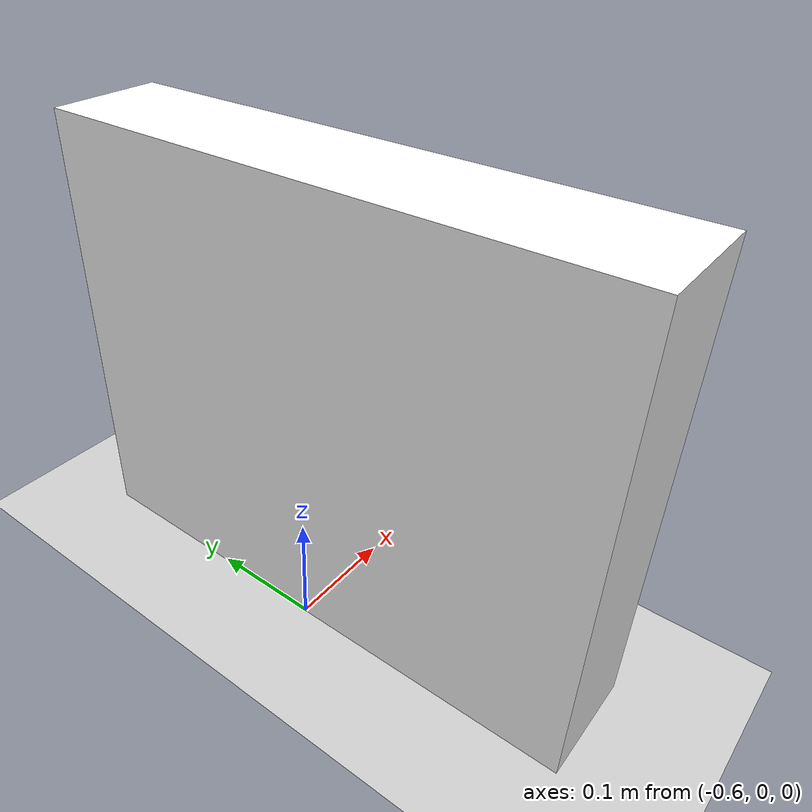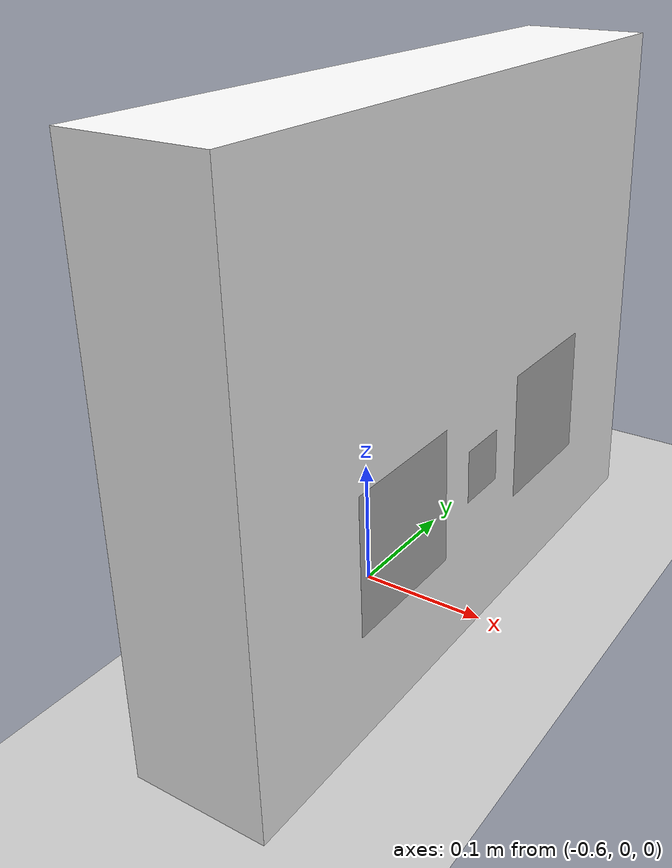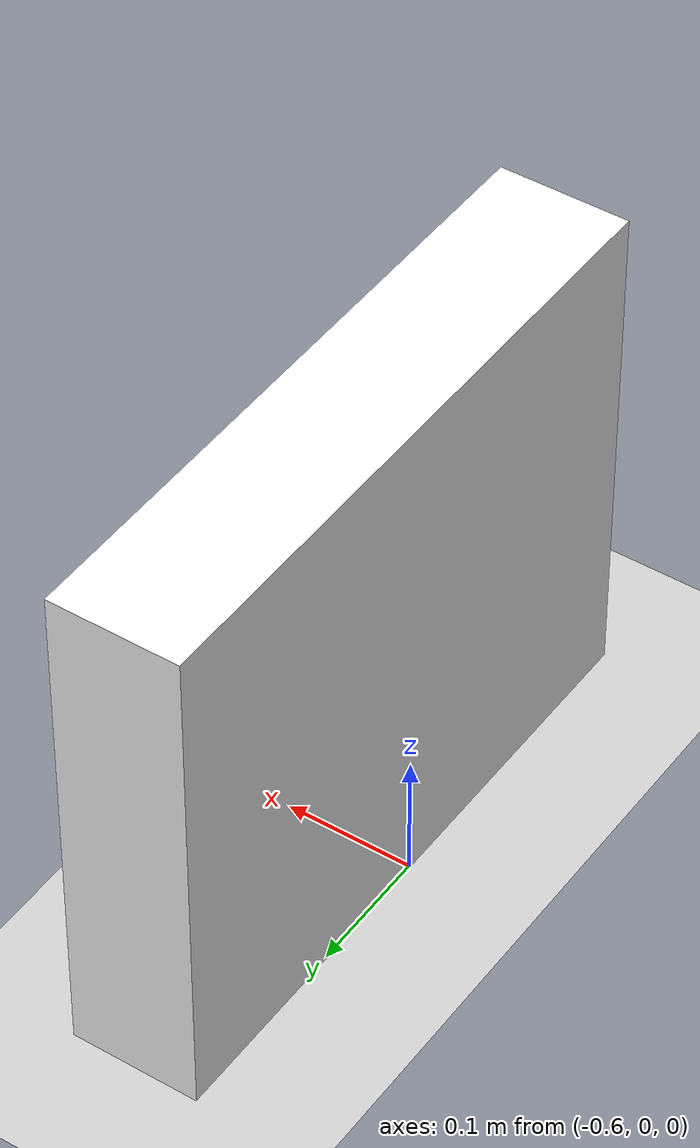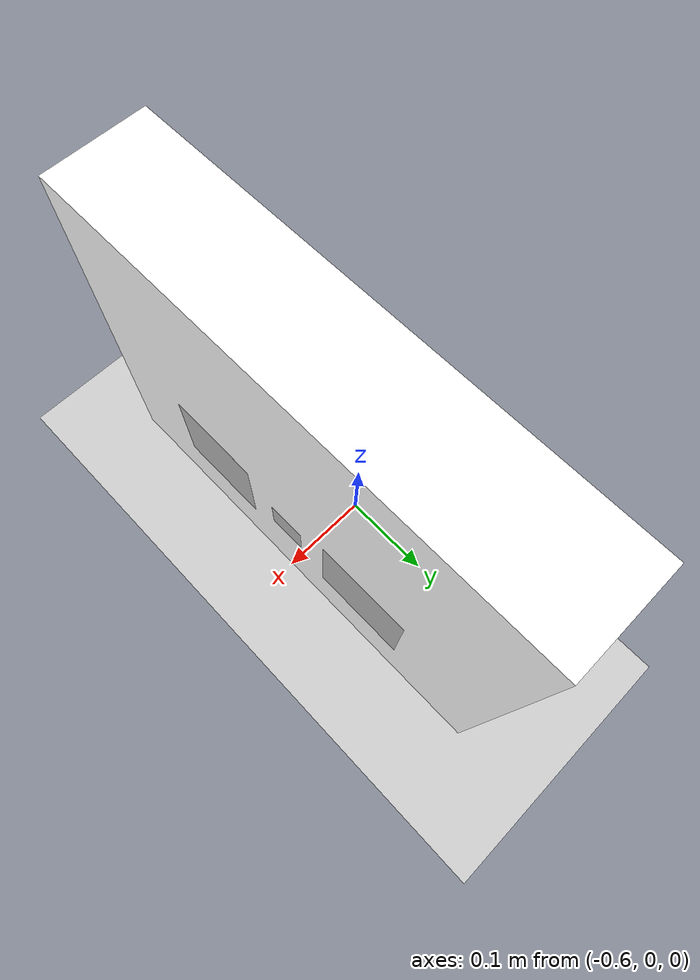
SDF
<sdf version="1.4">
  <world name="default">
    <physics type="ode">
      <max_step_size>0.002</max_step_size>
      <real_time_update_rate>2000</real_time_update_rate>
    </physics>

    <include>
      <uri>model://sun</uri>
    </include>
    <include>
      <uri>model://ground_plane</uri>
    </include>

    <light name='user_spot_light_0' type='spot'>
      <pose>0 0 2 0 -0 0</pose>
      <cast_shadows>0</cast_shadows>
      <spot>
        <inner_angle>0.6</inner_angle>
        <outer_angle>1</outer_angle>
        <falloff>1</falloff>
      </spot>
    </light>

    <include>
      <uri>model://MiniMockCharger</uri>
      <name>charger_base1</name>
      <pose>-0.5 0 0 0 0 0</pose>
			<static>True</static>
    </include>

  </world>
</sdf>

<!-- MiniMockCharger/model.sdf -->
<sdf version='1.6'>
  <model name='MiniMockCharger'>
    <allow_auto_disable>0</allow_auto_disable>
    <static>0</static>

    <!-- Charger Base: Offset to make sure origin is at bottom center-->
    <link name='charger_base'>
      <pose> -0.051 0 0.2 0 0 0</pose>

      <collision name='collision'>
        <geometry>
          <box>
            <size>.1 .5 0.4</size>
          </box>
        </geometry>
      </collision>

      <visual name='visual'>
        <geometry>
          <box>
            <size>.1 .5 0.4</size>
          </box>
        </geometry>
        <material>
          <ambient>.8 1 1 1</ambient>
          <diffuse>1 1 1 1</diffuse>
          <specular>0.1 0.1 0.1 1</specular>
          <emissive>0.3 0.3 0.3 0</emissive>
        </material>
      </visual>
    </link>

    <!-- Offset -10cm from centre-->
    <link name='left_marker'>
      <pose> 0 -0.1 0.13 -0 -1.57 3.14</pose>
      <visual name='visual'>
        <geometry>
          <box>
            <size>0.1 0.1 1e-5</size>
          </box>
        </geometry>
        <material>
          <script>
            <uri>model://Fiducial10/materials/scripts</uri>
            <uri>model://Fiducial10/materials/textures</uri>
            <name>Fiducial10/Marker</name>
          </script>
          <specular>0 0 0 1</specular>
          <emissive>1 1 1 0</emissive>
        </material>
      </visual>
    </link>

    <link name='centre_marker'>
      <pose> 0 0 0.13 -0 -1.57 3.14</pose>
      <visual name='visual'>
        <geometry>
          <box>
            <size>0.04 0.04 1e-5</size>
          </box>
        </geometry>
        <material>
          <script>
            <uri>model://Fiducial20/materials/scripts</uri>
            <uri>model://Fiducial20/materials/textures</uri>
            <name>Fiducial20/Marker</name>
          </script>
          <specular>0 0 0 1</specular>
          <emissive>1 1 1 0</emissive>
        </material>
      </visual>
    </link>

    <!-- Offset +10cm from centre-->
    <link name='right_marker'>
      <pose> 0 0.1 0.13 -0 -1.57 3.14</pose>
      <visual name='visual'>
        <geometry>
          <box>
            <size>0.1 0.1 1e-5</size>
          </box>
        </geometry>
        <material>
          <script>
            <uri>model://Fiducial11/materials/scripts</uri>
            <uri>model://Fiducial11/materials/textures</uri>
            <name>Fiducial11/Marker</name>
          </script>
          <specular>0 0 0 1</specular>
          <emissive>1 1 1 0</emissive>
        </material>
      </visual>
    </link>

    <joint name="aruco_tag_joint1" type="fixed">
      <parent>charger_base</parent>
      <child>left_marker</child>
    </joint>

    <joint name="aruco_tag_joint2" type="fixed">
      <parent>charger_base</parent>
      <child>centre_marker</child>
    </joint>

    <joint name="aruco_tag_joint3" type="fixed">
      <parent>charger_base</parent>
      <child>right_marker</child>
    </joint>

    <joint name="charger_contact_joint" type="fixed">
      <parent>charger_base</parent>
      <child>charger_contact</child>
    </joint>
  </model>
</sdf>
